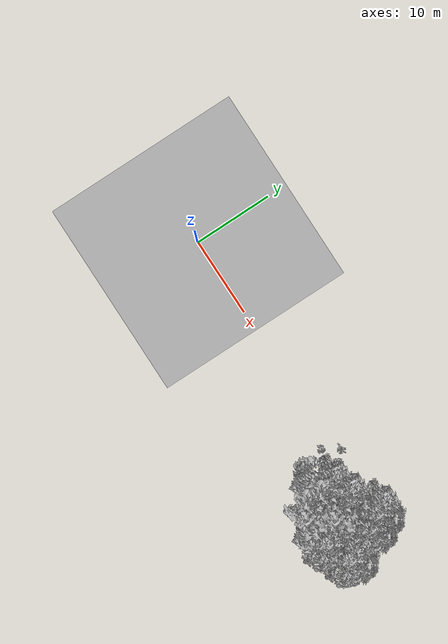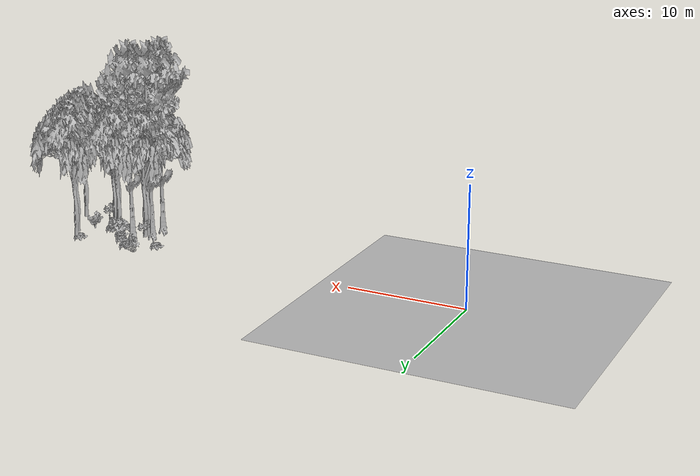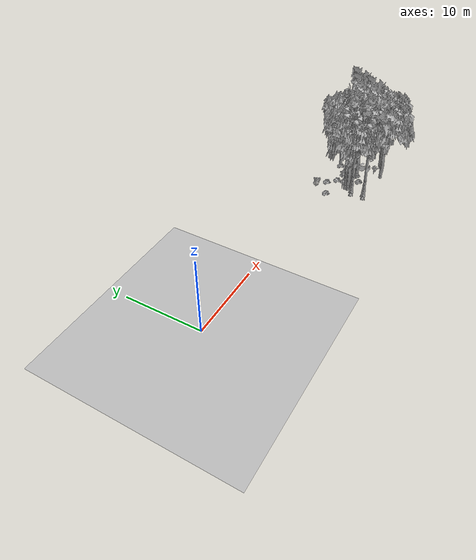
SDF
<sdf version="1.7">
 <world name="default">
  <model name="ground_plane">
   <static>1</static>
   <link name="link">
    <collision name="collision">
     <pose>-50 0 0 0 -0 0</pose>
     <geometry><plane><normal>0 0 1</normal><size>80 80</size></plane></geometry>
     <surface><contact><ode><min_depth>0.01</min_depth><max_vel>0</max_vel></ode></contact></surface>
    </collision>
    <visual name="grass">
     <cast_shadows>0</cast_shadows>
     <geometry>
      <mesh>
       <scale>0.46714285714285714 0.46714285714285714 0.1</scale>
       <uri>file://grass_plane/meshes/grass_plane.dae</uri>
      </mesh>
     </geometry>
    </visual>
   </link>
  </model>
  <model name="Tree 161">
   <static>1</static>
   <pose>30.997408010359152 -3.081937239166031 0 1.57079 -0 0</pose>
   <link name="link">
    <collision name="collision">
     <geometry><mesh><scale>3.5 5 3.5</scale><uri>model://tree_2/meshes/tree_2.obj</uri></mesh></geometry>
    </collision>
    <visual name="visual">
     <geometry><mesh><scale>3.5 5 3.5</scale><uri>model://tree_2/meshes/tree_2.obj</uri></mesh></geometry>
    </visual>
   </link>
  </model>
  <model name="Tree 224">
   <static>1</static>
   <pose>31.02404200349369 -4.036971924606277 0 1.57079 -0 0</pose>
   <link name="link">
    <collision name="collision">
     <geometry><mesh><scale>3.5 5 3.5</scale><uri>model://tree_9/meshes/tree_9.obj</uri></mesh></geometry>
    </collision>
    <visual name="visual">
     <geometry><mesh><scale>3.5 5 3.5</scale><uri>model://tree_9/meshes/tree_9.obj</uri></mesh></geometry>
    </visual>
   </link>
  </model>
  <model name="Tree 334">
   <static>1</static>
   <pose>37.0833506603462 -1.6921035143749634 0 1.57079 -0 0</pose>
   <link name="link">
    <collision name="collision">
     <geometry><mesh><scale>3.5 5 3.5</scale><uri>model://tree_2/meshes/tree_2.obj</uri></mesh></geometry>
    </collision>
    <visual name="visual">
     <geometry><mesh><scale>3.5 5 3.5</scale><uri>model://tree_2/meshes/tree_2.obj</uri></mesh></geometry>
    </visual>
   </link>
  </model>
  <model name="Tree 359">
   <static>1</static>
   <pose>32.62569022796802 -3.36734077911359 0 1.57079 -0 0</pose>
   <link name="link">
    <collision name="collision">
     <geometry><mesh><scale>3.5 5 3.5</scale><uri>model://tree_9/meshes/tree_9.obj</uri></mesh></geometry>
    </collision>
    <visual name="visual">
     <geometry><mesh><scale>3.5 5 3.5</scale><uri>model://tree_9/meshes/tree_9.obj</uri></mesh></geometry>
    </visual>
   </link>
  </model>
  <model name="Tree 372">
   <static>1</static>
   <pose>34.333125119602286 -3.40544382500903 0 1.57079 -0 0</pose>
   <link name="link">
    <collision name="collision">
     <geometry><mesh><scale>3.5 5 3.5</scale><uri>model://tree_2/meshes/tree_2.obj</uri></mesh></geometry>
    </collision>
    <visual name="visual">
     <geometry><mesh><scale>3.5 5 3.5</scale><uri>model://tree_2/meshes/tree_2.obj</uri></mesh></geometry>
    </visual>
   </link>
  </model>
  <model name="Tree 375">
   <static>1</static>
   <pose>33.180380876342454 -2.2786893736748794 0 1.57079 -0 0</pose>
   <link name="link">
    <collision name="collision">
     <geometry><mesh><scale>3.5 5 3.5</scale><uri>model://tree_2/meshes/tree_2.obj</uri></mesh></geometry>
    </collision>
    <visual name="visual">
     <geometry><mesh><scale>3.5 5 3.5</scale><uri>model://tree_2/meshes/tree_2.obj</uri></mesh></geometry>
    </visual>
   </link>
  </model>
  <model name="Tree 394">
   <static>1</static>
   <pose>30.958944500062174 -3.442762709147175 0 1.57079 -0 0</pose>
   <link name="link">
    <collision name="collision">
     <geometry><mesh><scale>3.5 5 3.5</scale><uri>model://tree_2/meshes/tree_2.obj</uri></mesh></geometry>
    </collision>
    <visual name="visual">
     <geometry><mesh><scale>3.5 5 3.5</scale><uri>model://tree_2/meshes/tree_2.obj</uri></mesh></geometry>
    </visual>
   </link>
  </model>
  <model name="Tree 417">
   <static>1</static>
   <pose>35.98637107789794 -6.369959215409722 0 1.57079 -0 0</pose>
   <link name="link">
    <collision name="collision">
     <geometry><mesh><scale>3.5 5 3.5</scale><uri>model://tree_2/meshes/tree_2.obj</uri></mesh></geometry>
    </collision>
    <visual name="visual">
     <geometry><mesh><scale>3.5 5 3.5</scale><uri>model://tree_2/meshes/tree_2.obj</uri></mesh></geometry>
    </visual>
   </link>
  </model>
  <model name="Tree 469">
   <static>1</static>
   <pose>31.036048435279767 -5.785407286105155 0 1.57079 -0 0</pose>
   <link name="link">
    <collision name="collision">
     <geometry><mesh><scale>3.5 5 3.5</scale><uri>model://tree_9/meshes/tree_9.obj</uri></mesh></geometry>
    </collision>
    <visual name="visual">
     <geometry><mesh><scale>3.5 5 3.5</scale><uri>model://tree_9/meshes/tree_9.obj</uri></mesh></geometry>
    </visual>
   </link>
  </model>
  <model name="Tree 531">
   <static>1</static>
   <pose>38.74573226260655 -5.2848157605721084 0 1.57079 -0 0</pose>
   <link name="link">
    <collision name="collision">
     <geometry><mesh><scale>3.5 5 3.5</scale><uri>model://tree_2/meshes/tree_2.obj</uri></mesh></geometry>
    </collision>
    <visual name="visual">
     <geometry><mesh><scale>3.5 5 3.5</scale><uri>model://tree_2/meshes/tree_2.obj</uri></mesh></geometry>
    </visual>
   </link>
  </model>
  <model name="Tree 615">
   <static>1</static>
   <pose>36.16921110776755 -0.20186825855738277 0 1.57079 -0 0</pose>
   <link name="link">
    <collision name="collision">
     <geometry><mesh><scale>3.5 5 3.5</scale><uri>model://tree_2/meshes/tree_2.obj</uri></mesh></geometry>
    </collision>
    <visual name="visual">
     <geometry><mesh><scale>3.5 5 3.5</scale><uri>model://tree_2/meshes/tree_2.obj</uri></mesh></geometry>
    </visual>
   </link>
  </model>
  <model name="Bush 54">
   <static>1</static>
   <pose>29.925325730656027 0.6903821574702107 0 1.57079 -0 0</pose>
   <link name="link">
    <collision name="collision">
     <geometry><mesh><scale>2 2 2</scale><uri>model://bush_4/meshes/bush_4.obj</uri></mesh></geometry>
     <surface><contact><collide_without_contact>false</collide_without_contact></contact></surface>
    </collision>
    <visual name="visual">
     <geometry><mesh><scale>2 2 2</scale><uri>model://bush_4/meshes/bush_4.obj</uri></mesh></geometry>
    </visual>
   </link>
  </model>
  <model name="Bush 101">
   <static>1</static>
   <pose>34.729449563551086 -3.3285962228950368 0 1.57079 -0 0</pose>
   <link name="link">
    <collision name="collision">
     <geometry><mesh><scale>2 2 2</scale><uri>model://bush_2/meshes/bush_2.obj</uri></mesh></geometry>
     <surface><contact><collide_without_contact>false</collide_without_contact></contact></surface>
    </collision>
    <visual name="visual">
     <geometry><mesh><scale>2 2 2</scale><uri>model://bush_2/meshes/bush_2.obj</uri></mesh></geometry>
    </visual>
   </link>
  </model>
  <model name="Bush 192">
   <static>1</static>
   <pose>33.17253268121081 -2.4230996480566986 0 1.57079 -0 0</pose>
   <link name="link">
    <collision name="collision">
     <geometry><mesh><scale>2 2 2</scale><uri>model://bush_2/meshes/bush_2.obj</uri></mesh></geometry>
     <surface><contact><collide_without_contact>false</collide_without_contact></contact></surface>
    </collision>
    <visual name="visual">
     <geometry><mesh><scale>2 2 2</scale><uri>model://bush_2/meshes/bush_2.obj</uri></mesh></geometry>
    </visual>
   </link>
  </model>
  <model name="Bush 222">
   <static>1</static>
   <pose>28.743161601024596 -1.2232651466581217 0 1.57079 -0 0</pose>
   <link name="link">
    <collision name="collision">
     <geometry><mesh><scale>2 2 2</scale><uri>model://bush_2/meshes/bush_2.obj</uri></mesh></geometry>
     <surface><contact><collide_without_contact>false</collide_without_contact></contact></surface>
    </collision>
    <visual name="visual">
     <geometry><mesh><scale>2 2 2</scale><uri>model://bush_2/meshes/bush_2.obj</uri></mesh></geometry>
    </visual>
   </link>
  </model>
  <model name="Bush 323">
   <static>1</static>
   <pose>32.35664381898516 -1.3811790823473657 0 1.57079 -0 0</pose>
   <link name="link">
    <collision name="collision">
     <geometry><mesh><scale>2 2 2</scale><uri>model://bush_2/meshes/bush_2.obj</uri></mesh></geometry>
     <surface><contact><collide_without_contact>false</collide_without_contact></contact></surface>
    </collision>
    <visual name="visual">
     <geometry><mesh><scale>2 2 2</scale><uri>model://bush_2/meshes/bush_2.obj</uri></mesh></geometry>
    </visual>
   </link>
  </model>
  <model name="Bush 342">
   <static>1</static>
   <pose>33.296993448917604 -2.3370457027987968 0 1.57079 -0 0</pose>
   <link name="link">
    <collision name="collision">
     <geometry><mesh><scale>2 2 2</scale><uri>model://bush_1/meshes/bush_1.obj</uri></mesh></geometry>
     <surface><contact><collide_without_contact>false</collide_without_contact></contact></surface>
    </collision>
    <visual name="visual">
     <geometry><mesh><scale>2 2 2</scale><uri>model://bush_1/meshes/bush_1.obj</uri></mesh></geometry>
    </visual>
   </link>
  </model>
  <model name="Bush 351">
   <static>1</static>
   <pose>36.24743996846837 -2.874590703758386 0 1.57079 -0 0</pose>
   <link name="link">
    <collision name="collision">
     <geometry><mesh><scale>2 2 2</scale><uri>model://bush_0/meshes/bush_0.obj</uri></mesh></geometry>
     <surface><contact><collide_without_contact>false</collide_without_contact></contact></surface>
    </collision>
    <visual name="visual">
     <geometry><mesh><scale>2 2 2</scale><uri>model://bush_0/meshes/bush_0.obj</uri></mesh></geometry>
    </visual>
   </link>
  </model>
  <model name="Bush 362">
   <static>1</static>
   <pose>31.267682318010998 -0.264529013348465 0 1.57079 -0 0</pose>
   <link name="link">
    <collision name="collision">
     <geometry><mesh><scale>2 2 2</scale><uri>model://bush_2/meshes/bush_2.obj</uri></mesh></geometry>
     <surface><contact><collide_without_contact>false</collide_without_contact></contact></surface>
    </collision>
    <visual name="visual">
     <geometry><mesh><scale>2 2 2</scale><uri>model://bush_2/meshes/bush_2.obj</uri></mesh></geometry>
    </visual>
   </link>
  </model>
  <model name="Bush 457">
   <static>1</static>
   <pose>36.36824984923946 -5.249277359391343 0 1.57079 -0 0</pose>
   <link name="link">
    <collision name="collision">
     <geometry><mesh><scale>2 2 2</scale><uri>model://bush_5/meshes/bush_5.obj</uri></mesh></geometry>
     <surface><contact><collide_without_contact>false</collide_without_contact></contact></surface>
    </collision>
    <visual name="visual">
     <geometry><mesh><scale>2 2 2</scale><uri>model://bush_5/meshes/bush_5.obj</uri></mesh></geometry>
    </visual>
   </link>
  </model>
  <model name="Bush 575">
   <static>1</static>
   <pose>35.99468704910865 -0.34654032086747577 0 1.57079 -0 0</pose>
   <link name="link">
    <collision name="collision">
     <geometry><mesh><scale>2 2 2</scale><uri>model://bush_2/meshes/bush_2.obj</uri></mesh></geometry>
     <surface><contact><collide_without_contact>false</collide_without_contact></contact></surface>
    </collision>
    <visual name="visual">
     <geometry><mesh><scale>2 2 2</scale><uri>model://bush_2/meshes/bush_2.obj</uri></mesh></geometry>
    </visual>
   </link>
  </model>
  <model name="Bush 577">
   <static>1</static>
   <pose>31.041633253650545 -2.6623133822712646 0 1.57079 -0 0</pose>
   <link name="link">
    <collision name="collision">
     <geometry><mesh><scale>2 2 2</scale><uri>model://bush_5/meshes/bush_5.obj</uri></mesh></geometry>
     <surface><contact><collide_without_contact>false</collide_without_contact></contact></surface>
    </collision>
    <visual name="visual">
     <geometry><mesh><scale>2 2 2</scale><uri>model://bush_5/meshes/bush_5.obj</uri></mesh></geometry>
    </visual>
   </link>
  </model>
  <model name="Bush 622">
   <static>1</static>
   <pose>33.4664585649689 -4.147622704658588 0 1.57079 -0 0</pose>
   <link name="link">
    <collision name="collision">
     <geometry><mesh><scale>2 2 2</scale><uri>model://bush_2/meshes/bush_2.obj</uri></mesh></geometry>
     <surface><contact><collide_without_contact>false</collide_without_contact></contact></surface>
    </collision>
    <visual name="visual">
     <geometry><mesh><scale>2 2 2</scale><uri>model://bush_2/meshes/bush_2.obj</uri></mesh></geometry>
    </visual>
   </link>
  </model>
 </world>
</sdf>
